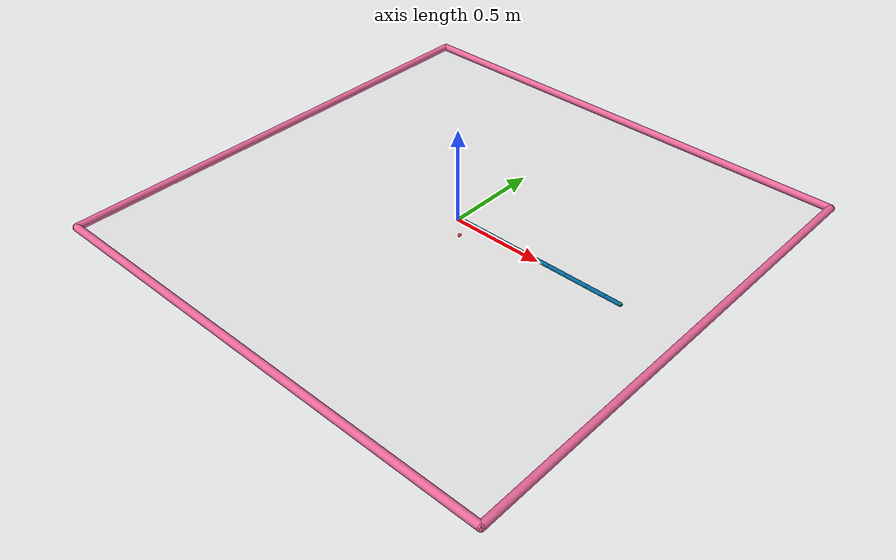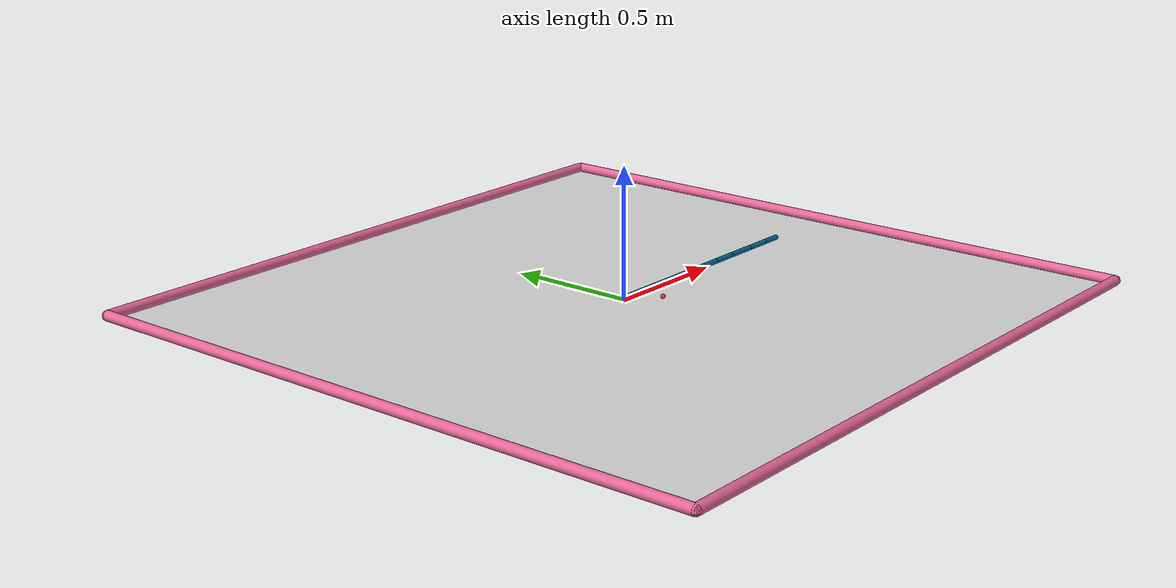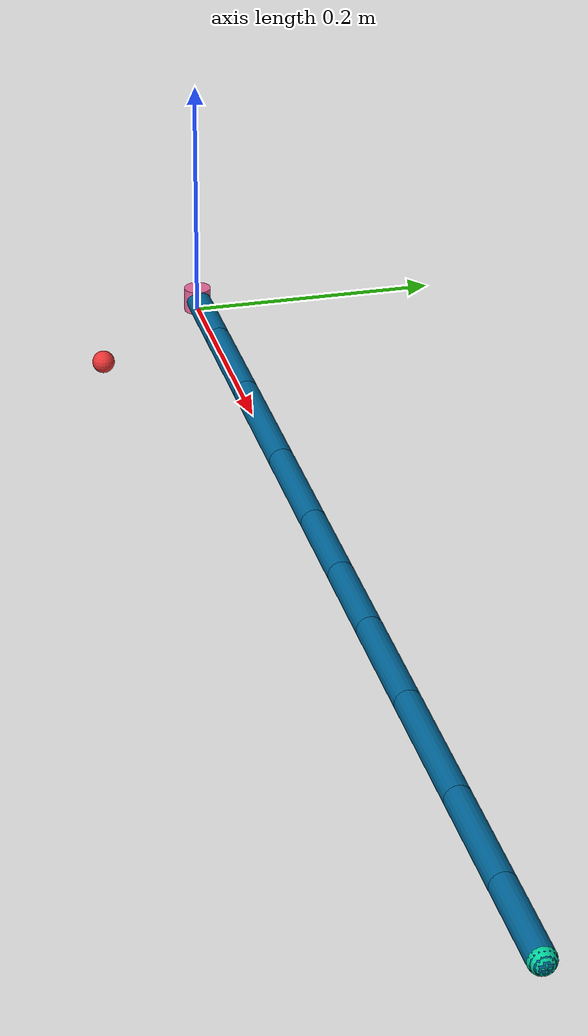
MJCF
<mujoco model="reacher_10j">
  <compiler angle="radian" inertiafromgeom="true"/>
  <default>
    <joint armature="1" damping="1" limited="true"/>
    <geom contype="1" conaffinity="1" friction="1 0.1 0.1" rgba="0.7 0.7 0 1" density="1000"/>
  </default>
  <option gravity="0 0 -9.81" integrator="RK4" timestep="0.002"/>
  <worldbody>
    <geom conaffinity="0" contype="0" name="ground" pos="0 0 0" rgba="0.9 0.9 0.9 1" size="1.296 1.296 10" type="plane"/>
    <geom conaffinity="0" contype="0" name="sideS" rgba="0.9 0.4 0.6 1" size="0.02" type="capsule" fromto="-1.296 -1.296 .01 1.296 -1.296 .01"/>
    <geom conaffinity="0" contype="0" name="sideE" rgba="0.9 0.4 0.6 1" size="0.02" type="capsule" fromto="1.296 -1.296 .01 1.296 1.296 .01"/>
    <geom conaffinity="0" contype="0" name="sideN" rgba="0.9 0.4 0.6 1" size="0.02" type="capsule" fromto="-1.296 1.296 .01 1.296 1.296 .01"/>
    <geom conaffinity="0" contype="0" name="sideW" rgba="0.9 0.4 0.6 1" size="0.02" type="capsule" fromto="-1.296 -1.296 .01 -1.296 1.296 .01"/>
    <geom conaffinity="0" contype="0" name="root" rgba="0.9 0.4 0.6 1" size=".011" type="cylinder" fromto="0 0 0 0 0 0.02"/>
    <body name="body0" pos="0 0 0.01">
      <geom name="link0" type="capsule" size="0.01" rgba="0.0 0.4 0.6 1" fromto="0 0 0 0.08 0 0"/>
      <joint name="joint0" type="hinge" pos="0 0 0" axis="0 0 1" limited="false"/>
      <body name="body1" pos="0.08 0 0">
      <geom name="link1" type="capsule" size="0.01" rgba="0.0 0.4 0.6 1" fromto="0 0 0 0.1 0 0"/>
      <joint name="joint1" type="hinge" pos="0 0 0" axis="0 0 1" limited="true" range="-2.5 2.5"/>
      <body name="body2" pos="0.1 0 0">
      <geom name="link2" type="capsule" size="0.01" rgba="0.0 0.4 0.6 1" fromto="0 0 0 0.12 0 0"/>
      <joint name="joint2" type="hinge" pos="0 0 0" axis="0 0 1" limited="true" range="-2.5 2.5"/>
      <body name="body3" pos="0.12 0 0">
      <geom name="link3" type="capsule" size="0.01" rgba="0.0 0.4 0.6 1" fromto="0 0 0 0.1 0 0"/>
      <joint name="joint3" type="hinge" pos="0 0 0" axis="0 0 1" limited="true" range="-2.5 2.5"/>
      <body name="body4" pos="0.1 0 0">
      <geom name="link4" type="capsule" size="0.01" rgba="0.0 0.4 0.6 1" fromto="0 0 0 0.08 0 0"/>
      <joint name="joint4" type="hinge" pos="0 0 0" axis="0 0 1" limited="true" range="-2.5 2.5"/>
      <body name="body5" pos="0.08 0 0">
      <geom name="link5" type="capsule" size="0.01" rgba="0.0 0.4 0.6 1" fromto="0 0 0 0.08 0 0"/>
      <joint name="joint5" type="hinge" pos="0 0 0" axis="0 0 1" limited="true" range="-2.5 2.5"/>
      <body name="body6" pos="0.08 0 0">
      <geom name="link6" type="capsule" size="0.01" rgba="0.0 0.4 0.6 1" fromto="0 0 0 0.1 0 0"/>
      <joint name="joint6" type="hinge" pos="0 0 0" axis="0 0 1" limited="true" range="-2.5 2.5"/>
      <body name="body7" pos="0.1 0 0">
      <geom name="link7" type="capsule" size="0.01" rgba="0.0 0.4 0.6 1" fromto="0 0 0 0.12 0 0"/>
      <joint name="joint7" type="hinge" pos="0 0 0" axis="0 0 1" limited="true" range="-2.5 2.5"/>
      <body name="body8" pos="0.12 0 0">
      <geom name="link8" type="capsule" size="0.01" rgba="0.0 0.4 0.6 1" fromto="0 0 0 0.1 0 0"/>
      <joint name="joint8" type="hinge" pos="0 0 0" axis="0 0 1" limited="true" range="-2.5 2.5"/>
      <body name="body9" pos="0.1 0 0">
      <geom name="link9" type="capsule" size="0.01" rgba="0.0 0.4 0.6 1" fromto="0 0 0 0.08 0 0"/>
      <joint name="joint9" type="hinge" pos="0 0 0" axis="0 0 1" limited="true" range="-2.5 2.5"/>
      <body name="fingertip" pos="0.08 0 0">
        <geom name="fingertip_col" type="sphere" size="0.015" rgba="0 0 0 0" pos="0 0 0" contype="1" conaffinity="1" margin="0.002"/>
        <geom name="fingertip_vis" type="sphere" size="0.01" rgba="0.0 0.8 0.6 1" pos="0 0 0" contype="0" conaffinity="0"/>
      </body>
    </body>
    </body>
    </body>
    </body>
    </body>
    </body>
    </body>
    </body>
    </body>
    </body>
    <body name="target" pos="0.1 -0.1 0.01">
      <joint name="target_x" type="slide" axis="1 0 0" limited="true" range="-0.864 0.864" ref="0.1" damping="0" armature="0" stiffness="0"/>
      <joint name="target_y" type="slide" axis="0 1 0" limited="true" range="-0.864 0.864" ref="-0.1" damping="0" armature="0" stiffness="0"/>
      <geom name="target" type="sphere" size="0.009" rgba="0.9 0.2 0.2 1" pos="0 0 0" contype="0" conaffinity="0"/>
    </body>
  </worldbody>
  <actuator>
    <motor joint="joint0" ctrllimited="true" ctrlrange="-1.0 1.0" gear="80.0"/>
    <motor joint="joint1" ctrllimited="true" ctrlrange="-1.0 1.0" gear="80.0"/>
    <motor joint="joint2" ctrllimited="true" ctrlrange="-1.0 1.0" gear="80.0"/>
    <motor joint="joint3" ctrllimited="true" ctrlrange="-1.0 1.0" gear="80.0"/>
    <motor joint="joint4" ctrllimited="true" ctrlrange="-1.0 1.0" gear="80.0"/>
    <motor joint="joint5" ctrllimited="true" ctrlrange="-1.0 1.0" gear="80.0"/>
    <motor joint="joint6" ctrllimited="true" ctrlrange="-1.0 1.0" gear="80.0"/>
    <motor joint="joint7" ctrllimited="true" ctrlrange="-1.0 1.0" gear="80.0"/>
    <motor joint="joint8" ctrllimited="true" ctrlrange="-1.0 1.0" gear="80.0"/>
    <motor joint="joint9" ctrllimited="true" ctrlrange="-1.0 1.0" gear="80.0"/>
  </actuator>
</mujoco>
